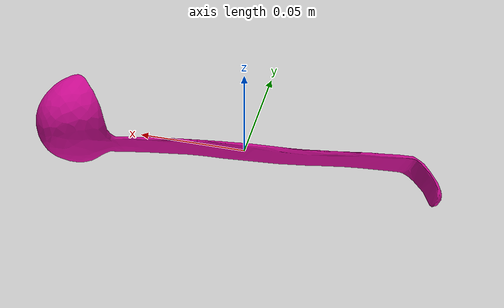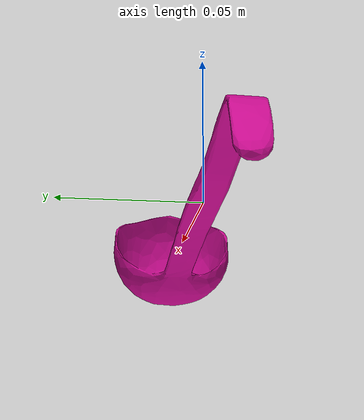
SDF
<?xml version="1.0"?>
<sdf version="1.6">
  <model name="robosub_ladle">
    <pose>0 0 0 0 0 0</pose>
    <static>false</static>
    <allow_auto_disable>false</allow_auto_disable>
    <self_collide>false</self_collide>

  <link name="robosub_ladle_link">
      <pose>0 0 0 0 0 0</pose>
      <inertial>
        <mass>0.01</mass>
        <inertia>
          <ixx>0.015</ixx>
          <iyy>0.015</iyy>
          <izz>0.015</izz>
          <ixy>0</ixy>
          <ixz>0</ixz>
          <iyz>0</iyz>
        </inertia>
        <pose>0 0 0 0 0 0</pose>
      </inertial>

      <!-- Gravity enabled -->
      <gravity>true</gravity>
      <kinematic>false</kinematic>

      <!-- Stability settings for better grasping -->
      <velocity_decay>
        <linear>0.05</linear>
        <angular>0.05</angular>
      </velocity_decay>
  <collision name="robosub_ladle_col">
        <pose>0 0 0 0 0 0</pose>
        <geometry>
          <mesh>
            <uri>model://robosub_ladle/meshes/ladle.dae</uri>
          </mesh>
        </geometry>
        <surface>
          <contact>
            <collide_bitmask>0xffff</collide_bitmask>
            <ode>
              <!-- Very stiff contact - prevents passing through ground -->
              <kp>10000000</kp>
              <kd>1000</kd>
              <max_vel>0.01</max_vel>
              <min_depth>0.001</min_depth>
            </ode>
          </contact>
          <friction>
            <ode>
              <!-- Very high friction - perfect grip with gripper -->
              <mu>50.0</mu>
              <mu2>50.0</mu2>
              <fdir1>0 0 0</fdir1>
              <slip1>0.0</slip1>
              <slip2>0.0</slip2>
            </ode>
            <torsional>
              <coefficient>1.0</coefficient>
              <use_patch_radius>true</use_patch_radius>
              <patch_radius>0.1</patch_radius>
            </torsional>
          </friction>
          <bounce>
            <restitution_coefficient>0.0</restitution_coefficient>
            <threshold>0.01</threshold>
          </bounce>
        </surface>
        <!-- Track more contact points -->
        <laser_retro>0.0</laser_retro>
        <max_contacts>250</max_contacts>
      </collision>
  <visual name="robosub_ladle_vis">
        <pose>0 0 0 0 0 0</pose>
        <geometry>
          <mesh>
            <uri>model://robosub_ladle/meshes/ladle.dae</uri>
          </mesh>
        </geometry>
      </visual>
    </link>
  </model>
</sdf>
